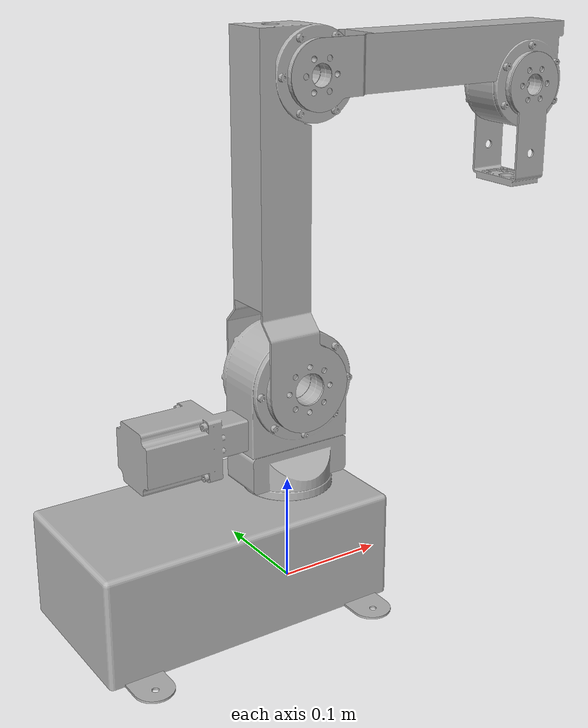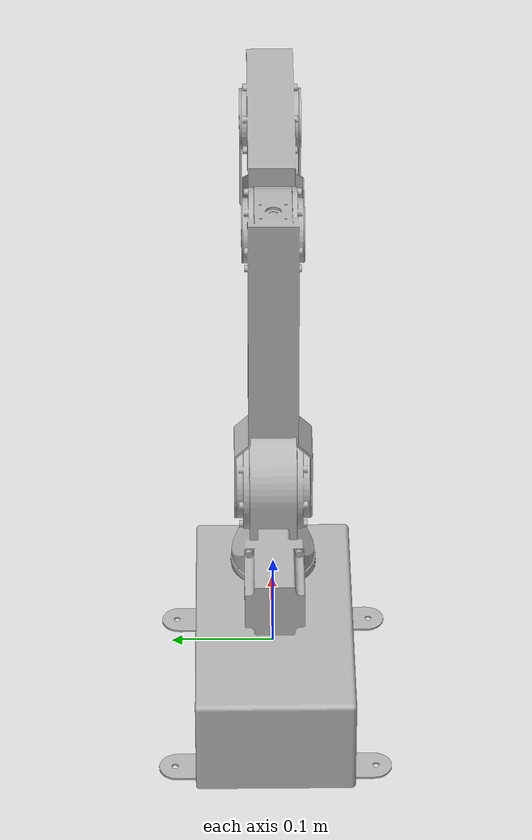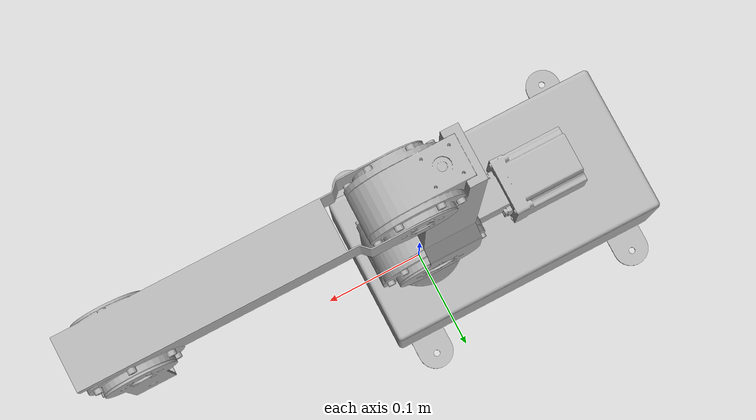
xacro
<?xml version="1.0"?>
<robot xmlns:xacro="http://www.ros.org/wiki/xacro"  name="robot">

    <!-- This is an example of a URDF. -->
    <!-- As we move through the file, new things to note will be pointed out. -->
    <!-- It's not meant an example of GOOD design, but an example of some of the various features of URDF/xacro. -->

    <!-- This will include all the contents of example_include.xacro first. Go check it out! -->
    <xacro:include filename="materials.xacro" />
    <xacro:property name="PI" value="3.141592653589793"/>

    <!-- This first link called "world" is empty -->
    <link name="world"></link>

    <!-- A simple fixed joint from our empty world link, to our base. -->
    <!-- The base origin is offset from the world origin. -->
    <joint name="base_joint" type="fixed">
        <origin xyz="0 0 0" rpy="0 0 0"/>
        <parent link="world"/>
        <child link="base_link"/>
    </joint>

    <!-- base_link is a large rectangular plate. Some things to note: -->
    <!-- - We set the visual origin Z to half the box height, so that the link origin sits at the bottom of the box -->
    <!-- - We set the collision to be identical to the visual -->
    <!-- - We specified the colour manually (but still need to enter a name) -->
    <!-- - We specified all the inertial parameters manually -->
    <link name="base_link">
    <inertial>
        <origin xyz="-0.09564368830443622 0.0012112707272121106 0.05097667978773091" rpy="0 0 0"/>
        <mass value="27.331661890168725"/>
        <inertia ixx="0.076348" iyy="0.188917" izz="0.220203" ixy="-0.003157" iyz="-0.000445" ixz="-0.004204"/>
    </inertial>
    <visual>
        <origin xyz="0 0 0" rpy="0 0 0"/>
        <geometry>
        <mesh filename="package://urdf_example/meshes/base_link.stl" scale="0.001 0.001 0.001"/>
        </geometry>
        <material name="silver"/>
    </visual>
    <collision>
        <origin xyz="0 0 0" rpy="0 0 0"/>
        <geometry>
        <mesh filename="package://urdf_example/meshes/base_link.stl" scale="0.001 0.001 0.001"/>
        </geometry>
    </collision>
    </link>

    <!-- slider_joint lets slider_link move back and forth along the top of the base in one dimension.  -->
    <!-- - Origin is set to one of the top edges of the base_link box, so that our link skims across the top  -->
    <!-- - It moves along the X axis -->
    <!-- - We need to specify limits for the motion -->
    <joint name="Axis_1" type="continuous">
        <origin xyz="0.0 0.0 0.099" rpy="0 0 0"/>
        <parent link="base_link"/>
        <child link="ax1_ax2_link"/>
        <axis xyz="0.0 0.0 -1.0"/>
    </joint>

    <!-- slider_link is the box skimming across the top of the base. Its parameters are similar to the base_link, however: -->
    <!-- - Instead of explicitly describing a colour, it uses the named material "blue". It knows about "blue" that material was included in example_include.xacro. -->
    <!-- - Instead of explicitly describing the inertia, we use a macro that was defined in the example_include.xacro -->

    <link name="ax1_ax2_link">
    <inertial>
        <origin xyz="-0.026153794282260473 0.000241561861043143 0.0712127331449195" rpy="0 0 0"/>
        <mass value="7.902676304338557"/>
        <inertia ixx="0.013853" iyy="0.035493" izz="0.026352" ixy="2e-06" iyz="-4e-06" ixz="-0.001749"/>
    </inertial>
    <visual>
        <origin xyz="-0.0 -0.0 -0.099" rpy="0 0 0"/>
        <geometry>
        <mesh filename="package://urdf_example/meshes/1_AXIS_1_1.stl" scale="0.001 0.001 0.001"/>
        </geometry>
        <material name="silver"/>
    </visual>
    <collision>
        <origin xyz="-0.0 -0.0 -0.099" rpy="0 0 0"/>
        <geometry>
        <mesh filename="package://urdf_example/meshes/1_AXIS_1_1.stl" scale="0.001 0.001 0.001"/>
        </geometry>
    </collision>
    </link>

    <!-- arm_joint describes the rotation of the arm and is centred around the top corner of the slider box. -->
    <!-- - The axis of rotation is -1 in Y, so that positive is "up" -->
    <!-- - The upper limit uses xacro's mathematical features -->
    <joint name="Axis_2" type="revolute">
        <origin xyz="0.0 0.035 0.10275" rpy="0 0 0"/>
        <parent link="ax1_ax2_link"/>
        <child link="ax2_ax3_link"/>
        <axis xyz="0.0 1.0 0.0"/>
        <limit lower="${-PI / 3.0}" upper="${PI/2.0}" effort="30" velocity="1.0"/>
    </joint>

    <!-- arm_link describes the arm -->
    <!-- - We use the "property" feature to define the arm length and radius and use them multiple times -->
    <!-- - The visual/collision origin is set to halfway along the length (similar to the box), but also with a rotation (again using the mathematical features). -->
    <!--   This is because the cylinder extends along the Z axis by default, but we want it to be along the X axis (when the joint is at 0) -->

    <xacro:property name="arm_length" value="1" />
    <xacro:property name="arm_radius" value="0.1" />
    <link name="ax2_ax3_link">
    <inertial>
        <origin xyz="-0.005668936335802665 -0.03475000001361264 0.2003768902953659" rpy="0 0 0"/>
        <mass value="5.606060961398385"/>
        <inertia ixx="0.033851" iyy="0.035534" izz="0.004268" ixy="0.0" iyz="0.0" ixz="-0.003135"/>
    </inertial>
    <visual>
        <origin xyz="-0.0 -0.035 -0.20175" rpy="0 0 0"/>
        <geometry>
        <mesh filename="package://urdf_example/meshes/2_AXIS_2_1.stl" scale="0.001 0.001 0.001"/>
        </geometry>
        <material name="silver"/>
    </visual>
    <collision>
        <origin xyz="-0.0 -0.035 -0.20175" rpy="0 0 0"/>
        <geometry>
        <mesh filename="package://urdf_example/meshes/2_AXIS_2_1.stl" scale="0.001 0.001 0.001"/>
        </geometry>
    </collision>
    </link>

    <!-- camera_joint describes where the camera is relative to the arm -->
    <!-- - Even though the camera isn't moving relative to the arm, it will probably be helpful to have its own link/frame rather than just adding more visuals to the arm -->
    <!-- - For this example, the camera_link origin will be at the centre of the camera's "sensor" -->
    <joint name="Axis_3" type="revolute">
        <origin xyz="0.01625 -0.00675 0.26953" rpy="0 0 0"/>
        <parent link="ax2_ax3_link"/>
        <child link="ax3_ax4_link"/>
        <axis xyz="-0.0 -1.0 -0.0"/>
        <limit lower="${-PI / 3.0}" upper="${PI/2.0}" effort="30" velocity="1.0"/>
    </joint>

    <!-- camera_link describes the camera at the end of the arm -->
    <!-- - It has multiple visual elements, which ultimately get combined together -->
    <!-- - Even if we specify different materials, RViz will just colour them all the same as the first -->
    <!-- - Although we could also specify multiple collision geometries, instead we just use a single box that encompasses the whole camera -->
    <link name="ax3_ax4_link">
        <inertial>
            <origin xyz="0.18159959562223355 -0.02800000031186445 -0.004785398729074464" rpy="0 0 0"/>
            <mass value="5.029257545475572"/>
            <inertia ixx="0.003664" iyy="0.024688" izz="0.022977" ixy="0.0" iyz="-0.0" ixz="0.002776"/>
        </inertial>
        <visual>
            <origin xyz="-0.01625 -0.02825 -0.47128" rpy="0 0 0"/>
            <geometry>
                <mesh filename="package://urdf_example/meshes/3_AXIS_3_1.stl" scale="0.001 0.001 0.001"/>
            </geometry>
            <material name="silver"/>
        </visual>
        <collision>
            <origin xyz="-0.01625 -0.02825 -0.47128" rpy="0 0 0"/>
            <geometry>
                <mesh filename="package://urdf_example/meshes/3_AXIS_3_1.stl" scale="0.001 0.001 0.001"/>
            </geometry>
        </collision>
    </link>

    <joint name="Axis_4" type="revolute">
        <origin xyz="0.23869 0.0 -0.02525" rpy="0 0 0"/>
        <parent link="ax3_ax4_link"/>
        <child link="ax4_hand_link"/>
        <axis xyz="0.0 1.0 0.0"/>
        <limit lower="${-PI*5.0 / 9.0}" upper="${PI/3.0}" effort="30" velocity="1.0"/>
    </joint>

    <link name="ax4_hand_link">
        <inertial>
            <origin xyz="4.5630166312093934e-14 -0.028000000019999895 -0.04743354311576614" rpy="0 0 0"/>
            <mass value="0.20316593653715326"/>
            <inertia ixx="0.000474" iyy="0.000374" izz="0.000167" ixy="-0.0" iyz="0.0" ixz="0.0"/>
        </inertial>
        <visual>
            <origin xyz="-0.25494 -0.02825 -0.44603" rpy="0 0 0"/>
            <geometry>
                <mesh filename="package://urdf_example/meshes/4_AXIS_4_1.stl" scale="0.001 0.001 0.001"/>
            </geometry>
            <material name="silver"/>
        </visual>
        <collision>
            <origin xyz="-0.25494 -0.02825 -0.44603" rpy="0 0 0"/>
            <geometry>
                <mesh filename="package://urdf_example/meshes/4_AXIS_4_1.stl" scale="0.001 0.001 0.001"/>
            </geometry>
        </collision>
    </link>

</robot>

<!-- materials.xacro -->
<robot name="PutArmiurdf" xmlns:xacro="http://www.ros.org/wiki/xacro" >

<material name="silver">
  <color rgba="0.700 0.700 0.700 1.000"/>
</material>

</robot>
